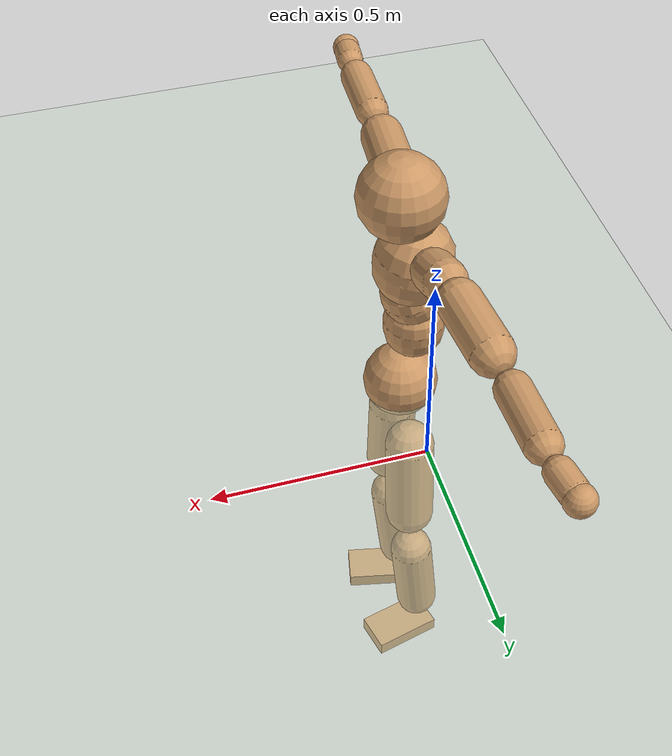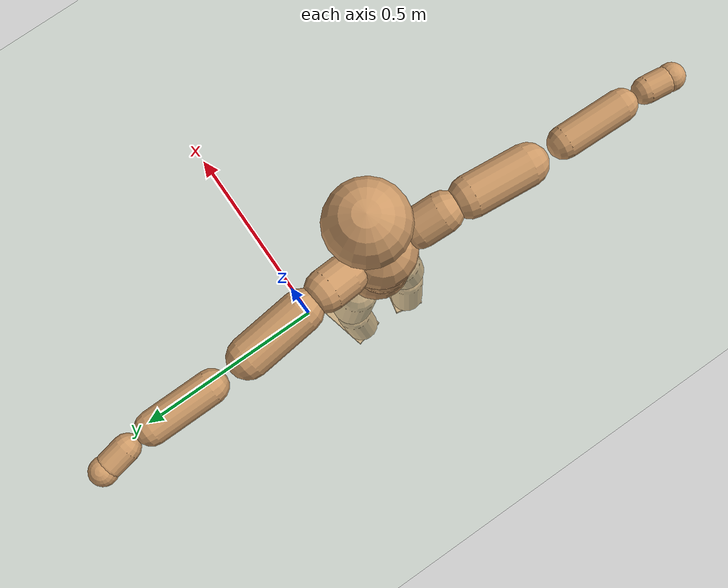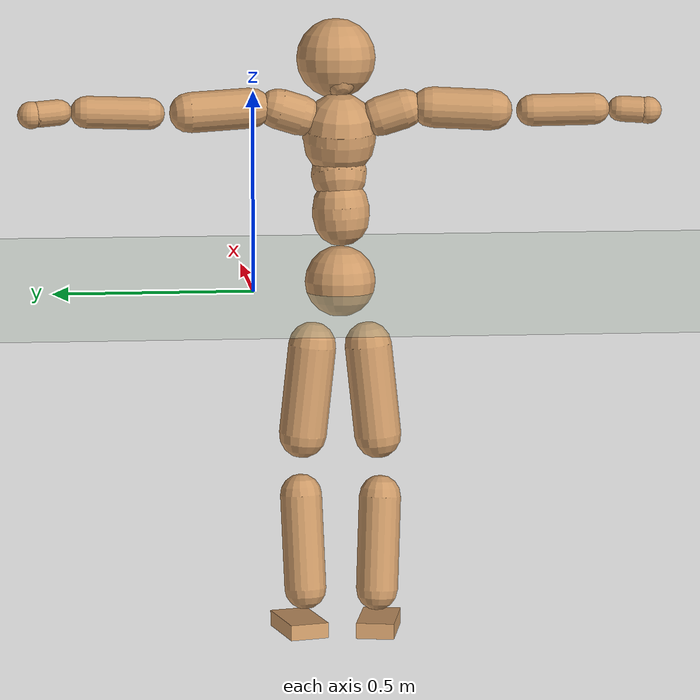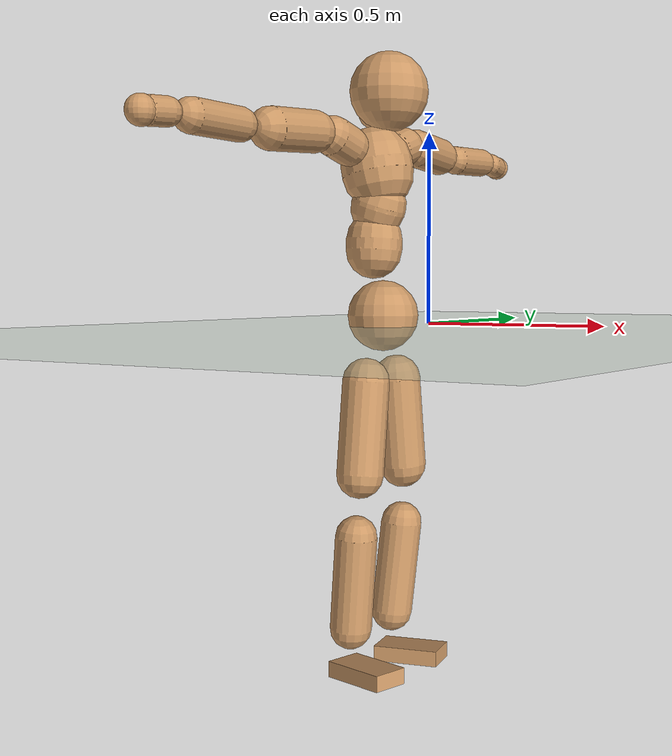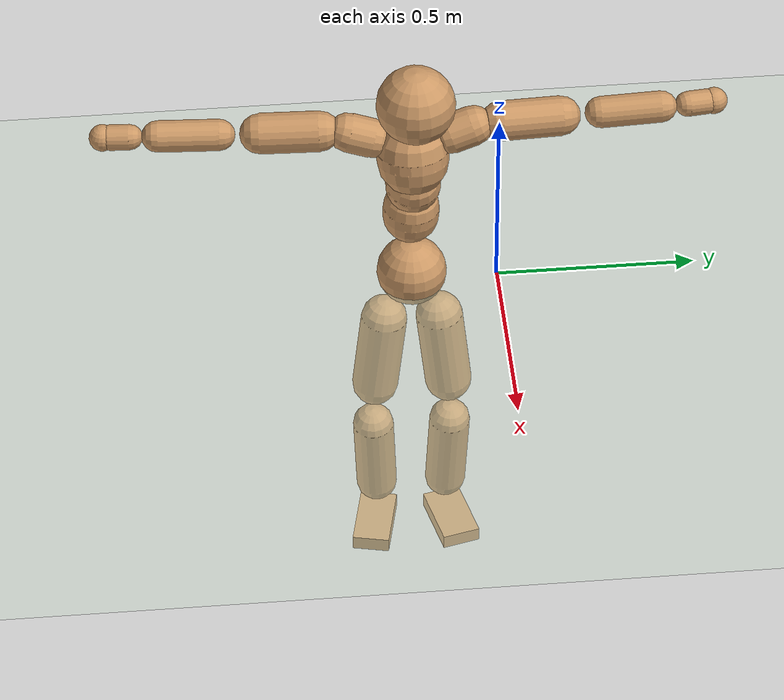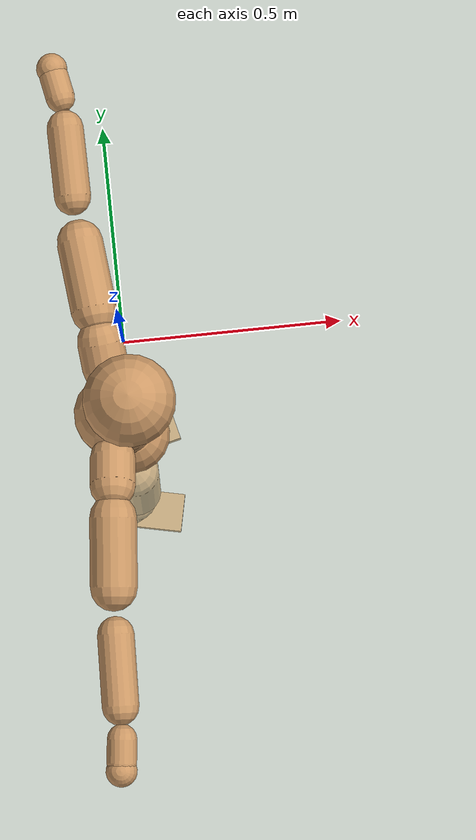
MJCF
<mujoco model="humanoid">
  <compiler coordinate="local"/>
  <default>
    <joint damping="0.0" armature="0.01" stiffness="0.0" limited="true"/>
    <geom conaffinity="1" condim="3" contype="7" margin="0.001" rgba="0.8 0.6 .4 1"/>
  </default>
  <asset>
    <texture type="skybox" builtin="gradient" rgb1=".4 .5 .6" rgb2="0 0 0" width="100" height="100"/>
    <texture builtin="flat" height="1278" mark="cross" markrgb="1 1 1" name="texgeom" random="0.01" rgb1="0.8 0.6 0.4" rgb2="0.8 0.6 0.4" type="cube" width="127"/>
    <texture builtin="checker" height="100" name="texplane" rgb1="0 0 0" rgb2="0.8 0.8 0.8" type="2d" width="100"/>
    <material name="MatPlane" reflectance="0.5" shininess="1" specular="1" texrepeat="60 60" texture="texplane"/>
    <material name="geom" texture="texgeom" texuniform="true"/>
  </asset>
  <worldbody>
    <light cutoff="100" diffuse="1 1 1" dir="-0 0 -1.3" directional="true" exponent="1" pos="0 0 1.3" specular=".1 .1 .1"/>
    <geom conaffinity="1" condim="3" name="floor" pos="0 0 0" rgba="0.8 0.9 0.8 1" size="100 100 .2" type="plane" material="MatPlane"/>
    <body name="Pelvis" pos="-0.0036 -0.2162 0.0248">
      <freejoint name="Pelvis"/>
      <geom type="sphere" contype="1" conaffinity="1" density="500" size="0.0886" pos="0.0000 0.0000 0.0000" name="Pelvis"/>
      <body name="L_Hip" pos="-0.0056 0.0628 -0.0868">
        <joint name="L_Hip_x" type="hinge" pos="0 0 0" axis="1 0 0" stiffness="800" damping="80" armature="0.02" range="-180.0000 180.0000"/>
        <joint name="L_Hip_y" type="hinge" pos="0 0 0" axis="0 1 0" stiffness="800" damping="80" armature="0.02" range="-180.0000 180.0000"/>
        <joint name="L_Hip_z" type="hinge" pos="0 0 0" axis="0 0 1" stiffness="800" damping="80" armature="0.02" range="-180.0000 180.0000"/>
        <geom type="capsule" contype="1" conaffinity="1" density="500" fromto="0.0008 0.0080 -0.0750 0.0033 0.0319 -0.3000" size="0.06" name="L_Hip"/>
        <body name="L_Knee" pos="0.0041 0.0399 -0.3751">
          <joint name="L_Knee_x" type="hinge" pos="0 0 0" axis="1 0 0" stiffness="800" damping="80" armature="0.02" range="-180.0000 180.0000"/>
          <joint name="L_Knee_y" type="hinge" pos="0 0 0" axis="0 1 0" stiffness="800" damping="80" armature="0.02" range="-180.0000 180.0000"/>
          <joint name="L_Knee_z" type="hinge" pos="0 0 0" axis="0 0 1" stiffness="800" damping="80" armature="0.02" range="-180.0000 180.0000"/>
          <geom type="capsule" contype="1" conaffinity="1" density="500" fromto="-0.0081 -0.0028 -0.0786 -0.0324 -0.0114 -0.3145" size="0.0526" name="L_Knee"/>
          <body name="L_Ankle" pos="-0.0405 -0.0142 -0.3931">
            <joint name="L_Ankle_x" type="hinge" pos="0 0 0" axis="1 0 0" stiffness="800" damping="80" armature="0.02" range="-180.0000 180.0000"/>
            <joint name="L_Ankle_y" type="hinge" pos="0 0 0" axis="0 1 0" stiffness="800" damping="80" armature="0.02" range="-180.0000 180.0000"/>
            <joint name="L_Ankle_z" type="hinge" pos="0 0 0" axis="0 0 1" stiffness="800" damping="80" armature="0.02" range="-180.0000 180.0000"/>
            <geom type="box" contype="1" conaffinity="1" density="500" pos="0.0593 0.0144 -0.0269" size="0.0848 0.0491 0.0196" quat="0.9929 0.0000 0.0000 0.1190" name="L_Ankle"/>
            <body name="L_Toe" pos="0.1185 0.0288 -0.0538">
              <joint name="L_Toe_x" type="hinge" pos="0 0 0" axis="1 0 0" stiffness="500" damping="50" armature="0.02" range="-180.0000 180.0000"/>
              <joint name="L_Toe_y" type="hinge" pos="0 0 0" axis="0 1 0" stiffness="500" damping="50" armature="0.02" range="-180.0000 180.0000"/>
              <joint name="L_Toe_z" type="hinge" pos="0 0 0" axis="0 0 1" stiffness="500" damping="50" armature="0.02" range="-180.0000 180.0000"/>
              <geom type="box" contype="1" conaffinity="1" density="500" pos="0.0000 0.0000 0.0267" size="0.001 0.0024 0.001" quat="0.9922 0.0000 0.0000 0.1249" name="L_Toe"/>
            </body>
          </body>
        </body>
      </body>
      <body name="R_Hip" pos="-0.0045 -0.0619 -0.0853">
        <joint name="R_Hip_x" type="hinge" pos="0 0 0" axis="1 0 0" stiffness="800" damping="80" armature="0.02" range="-180.0000 180.0000"/>
        <joint name="R_Hip_y" type="hinge" pos="0 0 0" axis="0 1 0" stiffness="800" damping="80" armature="0.02" range="-180.0000 180.0000"/>
        <joint name="R_Hip_z" type="hinge" pos="0 0 0" axis="0 0 1" stiffness="800" damping="80" armature="0.02" range="-180.0000 180.0000"/>
        <geom type="capsule" contype="1" conaffinity="1" density="500" fromto="-0.0005 -0.0081 -0.0765 -0.0022 -0.0324 -0.3059" size="0.0588" name="R_Hip"/>
        <body name="R_Knee" pos="-0.0027 -0.0405 -0.3824">
          <joint name="R_Knee_x" type="hinge" pos="0 0 0" axis="1 0 0" stiffness="800" damping="80" armature="0.02" range="-180.0000 180.0000"/>
          <joint name="R_Knee_y" type="hinge" pos="0 0 0" axis="0 1 0" stiffness="800" damping="80" armature="0.02" range="-180.0000 180.0000"/>
          <joint name="R_Knee_z" type="hinge" pos="0 0 0" axis="0 0 1" stiffness="800" damping="80" armature="0.02" range="-180.0000 180.0000"/>
          <geom type="capsule" contype="1" conaffinity="1" density="500" fromto="-0.0080 0.0032 -0.0785 -0.0319 0.0127 -0.3139" size="0.0526" name="R_Knee"/>
          <body name="R_Ankle" pos="-0.0399 0.0159 -0.3924">
            <joint name="R_Ankle_x" type="hinge" pos="0 0 0" axis="1 0 0" stiffness="800" damping="80" armature="0.02" range="-180.0000 180.0000"/>
            <joint name="R_Ankle_y" type="hinge" pos="0 0 0" axis="0 1 0" stiffness="800" damping="80" armature="0.02" range="-180.0000 180.0000"/>
            <joint name="R_Ankle_z" type="hinge" pos="0 0 0" axis="0 0 1" stiffness="800" damping="80" armature="0.02" range="-180.0000 180.0000"/>
            <geom type="box" contype="1" conaffinity="1" density="500" pos="0.0612 -0.0131 -0.0235" size="0.0858 0.0477 0.02" quat="0.9945 0.0000 0.0000 -0.1051" name="R_Ankle"/>
            <body name="R_Toe" pos="0.1223 -0.0261 -0.047">
              <joint name="R_Toe_x" type="hinge" pos="0 0 0" axis="1 0 0" stiffness="500" damping="50" armature="0.02" range="-180.0000 180.0000"/>
              <joint name="R_Toe_y" type="hinge" pos="0 0 0" axis="0 1 0" stiffness="500" damping="50" armature="0.02" range="-180.0000 180.0000"/>
              <joint name="R_Toe_z" type="hinge" pos="0 0 0" axis="0 0 1" stiffness="500" damping="50" armature="0.02" range="-180.0000 180.0000"/>
              <geom type="box" contype="1" conaffinity="1" density="500" pos="0.0000 0.0000 0.0234" size="0.001 0.0024 0.001" quat="0.9954 0.0000 0.0000 -0.0957" name="R_Toe"/>
            </body>
          </body>
        </body>
      </body>
      <body name="Torso" pos="-0.0289 -0.0026 0.1077">
        <joint name="Torso_x" type="hinge" pos="0 0 0" axis="1 0 0" stiffness="1000" damping="100" armature="0.02" range="-180.0000 180.0000"/>
        <joint name="Torso_y" type="hinge" pos="0 0 0" axis="0 1 0" stiffness="1000" damping="100" armature="0.02" range="-180.0000 180.0000"/>
        <joint name="Torso_z" type="hinge" pos="0 0 0" axis="0 0 1" stiffness="1000" damping="100" armature="0.02" range="-180.0000 180.0000"/>
        <geom type="capsule" contype="1" conaffinity="1" density="500" fromto="0.0016 0.0043 0.0831 0.0011 0.0029 0.0554" size="0.0709" name="Torso"/>
        <body name="Spine" pos="0.0027 0.0071 0.1385">
          <joint name="Spine_x" type="hinge" pos="0 0 0" axis="1 0 0" stiffness="1000" damping="100" armature="0.02" range="-180.0000 180.0000"/>
          <joint name="Spine_y" type="hinge" pos="0 0 0" axis="0 1 0" stiffness="1000" damping="100" armature="0.02" range="-180.0000 180.0000"/>
          <joint name="Spine_z" type="hinge" pos="0 0 0" axis="0 0 1" stiffness="1000" damping="100" armature="0.02" range="-180.0000 180.0000"/>
          <geom type="capsule" contype="1" conaffinity="1" density="500" fromto="0.0112 0.0008 0.0313 0.0075 0.0005 0.0209" size="0.069" name="Spine"/>
          <body name="Chest" pos="0.0187 0.0013 0.0522">
            <joint name="Chest_x" type="hinge" pos="0 0 0" axis="1 0 0" stiffness="1000" damping="100" armature="0.02" range="-180.0000 180.0000"/>
            <joint name="Chest_y" type="hinge" pos="0 0 0" axis="0 1 0" stiffness="1000" damping="100" armature="0.02" range="-180.0000 180.0000"/>
            <joint name="Chest_z" type="hinge" pos="0 0 0" axis="0 0 1" stiffness="1000" damping="100" armature="0.02" range="-180.0000 180.0000"/>
            <geom type="capsule" contype="1" conaffinity="1" density="500" fromto="-0.0157 -0.0015 0.0836 -0.0105 -0.0010 0.0558" size="0.0902" name="Chest"/>
            <body name="Neck" pos="-0.027 -0.0038 0.1952">
              <joint name="Neck_x" type="hinge" pos="0 0 0" axis="1 0 0" stiffness="500" damping="50" armature="0.02" range="-180.0000 180.0000"/>
              <joint name="Neck_y" type="hinge" pos="0 0 0" axis="0 1 0" stiffness="500" damping="50" armature="0.02" range="-180.0000 180.0000"/>
              <joint name="Neck_z" type="hinge" pos="0 0 0" axis="0 0 1" stiffness="500" damping="50" armature="0.02" range="-180.0000 180.0000"/>
              <geom type="capsule" contype="1" conaffinity="1" density="500" fromto="0.0094 0.0015 0.0123 0.0376 0.0060 0.0491" size="0.043" name="Neck"/>
              <body name="Head" pos="0.047 0.0075 0.0614">
                <joint name="Head_x" type="hinge" pos="0 0 0" axis="1 0 0" stiffness="500" damping="50" armature="0.02" range="-180.0000 180.0000"/>
                <joint name="Head_y" type="hinge" pos="0 0 0" axis="0 1 0" stiffness="500" damping="50" armature="0.02" range="-180.0000 180.0000"/>
                <joint name="Head_z" type="hinge" pos="0 0 0" axis="0 0 1" stiffness="500" damping="50" armature="0.02" range="-180.0000 180.0000"/>
                <geom type="sphere" contype="1" conaffinity="1" density="500" size="0.0985" pos="0.0000 0.0000 0.0000" name="Head"/>
              </body>
            </body>
            <body name="L_Thorax" pos="-0.0236 0.0766 0.1133">
              <joint name="L_Thorax_x" type="hinge" pos="0 0 0" axis="1 0 0" stiffness="500" damping="50" armature="0.02" range="-180.0000 180.0000"/>
              <joint name="L_Thorax_y" type="hinge" pos="0 0 0" axis="0 1 0" stiffness="500" damping="50" armature="0.02" range="-180.0000 180.0000"/>
              <joint name="L_Thorax_z" type="hinge" pos="0 0 0" axis="0 0 1" stiffness="500" damping="50" armature="0.02" range="-180.0000 180.0000"/>
              <geom type="capsule" contype="1" conaffinity="1" density="500" fromto="-0.0018 0.0185 0.0059 -0.0070 0.0738 0.0235" size="0.0503" name="L_Thorax"/>
              <body name="L_Shoulder" pos="-0.0088 0.0923 0.0293">
                <joint name="L_Shoulder_x" type="hinge" pos="0 0 0" axis="1 0 0" stiffness="500" damping="50" armature="0.02" range="-720.0000 720.0000"/>
                <joint name="L_Shoulder_y" type="hinge" pos="0 0 0" axis="0 1 0" stiffness="500" damping="50" armature="0.02" range="-720.0000 720.0000"/>
                <joint name="L_Shoulder_z" type="hinge" pos="0 0 0" axis="0 0 1" stiffness="500" damping="50" armature="0.02" range="-720.0000 720.0000"/>
                <geom type="capsule" contype="1" conaffinity="1" density="500" fromto="-0.0054 0.0502 -0.0028 -0.0216 0.2009 -0.0113" size="0.05" name="L_Shoulder"/>
                <body name="L_Elbow" pos="-0.027 0.2512 -0.0142">
                  <joint name="L_Elbow_x" type="hinge" pos="0 0 0" axis="1 0 0" stiffness="500" damping="50" armature="0.02" range="-720.0000 720.0000"/>
                  <joint name="L_Elbow_y" type="hinge" pos="0 0 0" axis="0 1 0" stiffness="500" damping="50" armature="0.02" range="-720.0000 720.0000"/>
                  <joint name="L_Elbow_z" type="hinge" pos="0 0 0" axis="0 0 1" stiffness="500" damping="50" armature="0.02" range="-720.0000 720.0000"/>
                  <geom type="capsule" contype="1" conaffinity="1" density="500" fromto="-0.0006 0.0503 0.0017 -0.0023 0.2011 0.0069" size="0.0396" name="L_Elbow"/>
                  <body name="L_Wrist" pos="-0.0029 0.2514 0.0086">
                    <joint name="L_Wrist_x" type="hinge" pos="0 0 0" axis="1 0 0" stiffness="300" damping="30" armature="0.02" range="-180.0000 180.0000"/>
                    <joint name="L_Wrist_y" type="hinge" pos="0 0 0" axis="0 1 0" stiffness="300" damping="30" armature="0.02" range="-180.0000 180.0000"/>
                    <joint name="L_Wrist_z" type="hinge" pos="0 0 0" axis="0 0 1" stiffness="300" damping="30" armature="0.02" range="-180.0000 180.0000"/>
                    <geom type="capsule" contype="1" conaffinity="1" density="500" fromto="-0.0032 0.0168 -0.0013 -0.0129 0.0674 -0.0052" size="0.0317" name="L_Wrist"/>
                    <body name="L_Hand" pos="-0.0161 0.0842 -0.0065">
                      <joint name="L_Hand_x" type="hinge" pos="0 0 0" axis="1 0 0" stiffness="300" damping="30" armature="0.02" range="-180.0000 180.0000"/>
                      <joint name="L_Hand_y" type="hinge" pos="0 0 0" axis="0 1 0" stiffness="300" damping="30" armature="0.02" range="-180.0000 180.0000"/>
                      <joint name="L_Hand_z" type="hinge" pos="0 0 0" axis="0 0 1" stiffness="300" damping="30" armature="0.02" range="-180.0000 180.0000"/>
                      <geom type="sphere" contype="1" conaffinity="1" density="500" size="0.0335" pos="0.0000 0.0000 0.0000" name="L_Hand"/>
                    </body>
                  </body>
                </body>
              </body>
            </body>
            <body name="R_Thorax" pos="-0.028 -0.0805 0.1096">
              <joint name="R_Thorax_x" type="hinge" pos="0 0 0" axis="1 0 0" stiffness="500" damping="50" armature="0.02" range="-180.0000 180.0000"/>
              <joint name="R_Thorax_y" type="hinge" pos="0 0 0" axis="0 1 0" stiffness="500" damping="50" armature="0.02" range="-180.0000 180.0000"/>
              <joint name="R_Thorax_z" type="hinge" pos="0 0 0" axis="0 0 1" stiffness="500" damping="50" armature="0.02" range="-180.0000 180.0000"/>
              <geom type="capsule" contype="1" conaffinity="1" density="500" fromto="-0.0016 -0.0197 0.0063 -0.0064 -0.0788 0.0251" size="0.0492" name="R_Thorax"/>
              <body name="R_Shoulder" pos="-0.008 -0.0985 0.0314">
                <joint name="R_Shoulder_x" type="hinge" pos="0 0 0" axis="1 0 0" stiffness="500" damping="50" armature="0.02" range="-720.0000 720.0000"/>
                <joint name="R_Shoulder_y" type="hinge" pos="0 0 0" axis="0 1 0" stiffness="500" damping="50" armature="0.02" range="-720.0000 720.0000"/>
                <joint name="R_Shoulder_z" type="hinge" pos="0 0 0" axis="0 0 1" stiffness="500" damping="50" armature="0.02" range="-720.0000 720.0000"/>
                <geom type="capsule" contype="1" conaffinity="1" density="500" fromto="-0.0043 -0.0490 -0.0023 -0.0171 -0.1961 -0.0094" size="0.0509" name="R_Shoulder"/>
                <body name="R_Elbow" pos="-0.0213 -0.2451 -0.0117">
                  <joint name="R_Elbow_x" type="hinge" pos="0 0 0" axis="1 0 0" stiffness="500" damping="50" armature="0.02" range="-720.0000 720.0000"/>
                  <joint name="R_Elbow_y" type="hinge" pos="0 0 0" axis="0 1 0" stiffness="500" damping="50" armature="0.02" range="-720.0000 720.0000"/>
                  <joint name="R_Elbow_z" type="hinge" pos="0 0 0" axis="0 0 1" stiffness="500" damping="50" armature="0.02" range="-720.0000 720.0000"/>
                  <geom type="capsule" contype="1" conaffinity="1" density="500" fromto="-0.0015 -0.0508 0.0010 -0.0060 -0.2031 0.0039" size="0.0395" name="R_Elbow"/>
                  <body name="R_Wrist" pos="-0.0075 -0.2539 0.0049">
                    <joint name="R_Wrist_x" type="hinge" pos="0 0 0" axis="1 0 0" stiffness="300" damping="30" armature="0.02" range="-180.0000 180.0000"/>
                    <joint name="R_Wrist_y" type="hinge" pos="0 0 0" axis="0 1 0" stiffness="300" damping="30" armature="0.02" range="-180.0000 180.0000"/>
                    <joint name="R_Wrist_z" type="hinge" pos="0 0 0" axis="0 0 1" stiffness="300" damping="30" armature="0.02" range="-180.0000 180.0000"/>
                    <geom type="capsule" contype="1" conaffinity="1" density="500" fromto="-0.0019 -0.0168 -0.0009 -0.0077 -0.0670 -0.0037" size="0.0322" name="R_Wrist"/>
                    <body name="R_Hand" pos="-0.0096 -0.0838 -0.0046">
                      <joint name="R_Hand_x" type="hinge" pos="0 0 0" axis="1 0 0" stiffness="300" damping="30" armature="0.02" range="-180.0000 180.0000"/>
                      <joint name="R_Hand_y" type="hinge" pos="0 0 0" axis="0 1 0" stiffness="300" damping="30" armature="0.02" range="-180.0000 180.0000"/>
                      <joint name="R_Hand_z" type="hinge" pos="0 0 0" axis="0 0 1" stiffness="300" damping="30" armature="0.02" range="-180.0000 180.0000"/>
                      <geom type="sphere" contype="1" conaffinity="1" density="500" size="0.0336" pos="0.0000 0.0000 0.0000" name="R_Hand"/>
                    </body>
                  </body>
                </body>
              </body>
            </body>
          </body>
        </body>
      </body>
    </body>
  </worldbody>
  <actuator>
    <motor name="L_Hip_x" joint="L_Hip_x" gear="500"/>
    <motor name="L_Hip_y" joint="L_Hip_y" gear="500"/>
    <motor name="L_Hip_z" joint="L_Hip_z" gear="500"/>
    <motor name="L_Knee_x" joint="L_Knee_x" gear="500"/>
    <motor name="L_Knee_y" joint="L_Knee_y" gear="500"/>
    <motor name="L_Knee_z" joint="L_Knee_z" gear="500"/>
    <motor name="L_Ankle_x" joint="L_Ankle_x" gear="500"/>
    <motor name="L_Ankle_y" joint="L_Ankle_y" gear="500"/>
    <motor name="L_Ankle_z" joint="L_Ankle_z" gear="500"/>
    <motor name="L_Toe_x" joint="L_Toe_x" gear="500"/>
    <motor name="L_Toe_y" joint="L_Toe_y" gear="500"/>
    <motor name="L_Toe_z" joint="L_Toe_z" gear="500"/>
    <motor name="R_Hip_x" joint="R_Hip_x" gear="500"/>
    <motor name="R_Hip_y" joint="R_Hip_y" gear="500"/>
    <motor name="R_Hip_z" joint="R_Hip_z" gear="500"/>
    <motor name="R_Knee_x" joint="R_Knee_x" gear="500"/>
    <motor name="R_Knee_y" joint="R_Knee_y" gear="500"/>
    <motor name="R_Knee_z" joint="R_Knee_z" gear="500"/>
    <motor name="R_Ankle_x" joint="R_Ankle_x" gear="500"/>
    <motor name="R_Ankle_y" joint="R_Ankle_y" gear="500"/>
    <motor name="R_Ankle_z" joint="R_Ankle_z" gear="500"/>
    <motor name="R_Toe_x" joint="R_Toe_x" gear="500"/>
    <motor name="R_Toe_y" joint="R_Toe_y" gear="500"/>
    <motor name="R_Toe_z" joint="R_Toe_z" gear="500"/>
    <motor name="Torso_x" joint="Torso_x" gear="500"/>
    <motor name="Torso_y" joint="Torso_y" gear="500"/>
    <motor name="Torso_z" joint="Torso_z" gear="500"/>
    <motor name="Spine_x" joint="Spine_x" gear="500"/>
    <motor name="Spine_y" joint="Spine_y" gear="500"/>
    <motor name="Spine_z" joint="Spine_z" gear="500"/>
    <motor name="Chest_x" joint="Chest_x" gear="500"/>
    <motor name="Chest_y" joint="Chest_y" gear="500"/>
    <motor name="Chest_z" joint="Chest_z" gear="500"/>
    <motor name="Neck_x" joint="Neck_x" gear="500"/>
    <motor name="Neck_y" joint="Neck_y" gear="500"/>
    <motor name="Neck_z" joint="Neck_z" gear="500"/>
    <motor name="Head_x" joint="Head_x" gear="500"/>
    <motor name="Head_y" joint="Head_y" gear="500"/>
    <motor name="Head_z" joint="Head_z" gear="500"/>
    <motor name="L_Thorax_x" joint="L_Thorax_x" gear="500"/>
    <motor name="L_Thorax_y" joint="L_Thorax_y" gear="500"/>
    <motor name="L_Thorax_z" joint="L_Thorax_z" gear="500"/>
    <motor name="L_Shoulder_x" joint="L_Shoulder_x" gear="500"/>
    <motor name="L_Shoulder_y" joint="L_Shoulder_y" gear="500"/>
    <motor name="L_Shoulder_z" joint="L_Shoulder_z" gear="500"/>
    <motor name="L_Elbow_x" joint="L_Elbow_x" gear="500"/>
    <motor name="L_Elbow_y" joint="L_Elbow_y" gear="500"/>
    <motor name="L_Elbow_z" joint="L_Elbow_z" gear="500"/>
    <motor name="L_Wrist_x" joint="L_Wrist_x" gear="500"/>
    <motor name="L_Wrist_y" joint="L_Wrist_y" gear="500"/>
    <motor name="L_Wrist_z" joint="L_Wrist_z" gear="500"/>
    <motor name="L_Hand_x" joint="L_Hand_x" gear="500"/>
    <motor name="L_Hand_y" joint="L_Hand_y" gear="500"/>
    <motor name="L_Hand_z" joint="L_Hand_z" gear="500"/>
    <motor name="R_Thorax_x" joint="R_Thorax_x" gear="500"/>
    <motor name="R_Thorax_y" joint="R_Thorax_y" gear="500"/>
    <motor name="R_Thorax_z" joint="R_Thorax_z" gear="500"/>
    <motor name="R_Shoulder_x" joint="R_Shoulder_x" gear="500"/>
    <motor name="R_Shoulder_y" joint="R_Shoulder_y" gear="500"/>
    <motor name="R_Shoulder_z" joint="R_Shoulder_z" gear="500"/>
    <motor name="R_Elbow_x" joint="R_Elbow_x" gear="500"/>
    <motor name="R_Elbow_y" joint="R_Elbow_y" gear="500"/>
    <motor name="R_Elbow_z" joint="R_Elbow_z" gear="500"/>
    <motor name="R_Wrist_x" joint="R_Wrist_x" gear="500"/>
    <motor name="R_Wrist_y" joint="R_Wrist_y" gear="500"/>
    <motor name="R_Wrist_z" joint="R_Wrist_z" gear="500"/>
    <motor name="R_Hand_x" joint="R_Hand_x" gear="500"/>
    <motor name="R_Hand_y" joint="R_Hand_y" gear="500"/>
    <motor name="R_Hand_z" joint="R_Hand_z" gear="500"/>
  </actuator>
  <contact>
    <exclude body1="Torso" body2="Chest"/>
    <exclude body1="Head" body2="Chest"/>
    <exclude body1="R_Knee" body2="R_Toe"/>
    <exclude body1="R_Knee" body2="L_Ankle"/>
    <exclude body1="R_Knee" body2="L_Toe"/>
    <exclude body1="L_Knee" body2="L_Toe"/>
    <exclude body1="L_Knee" body2="R_Ankle"/>
    <exclude body1="L_Knee" body2="R_Toe"/>
    <exclude body1="L_Shoulder" body2="Chest"/>
    <exclude body1="R_Shoulder" body2="Chest"/>
  </contact>
  <sensor/>
  <size njmax="700" nconmax="700"/>
</mujoco>
